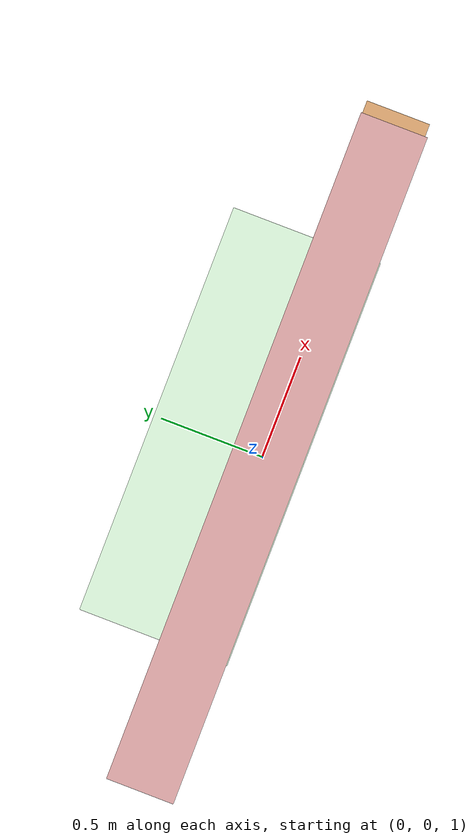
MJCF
<mujoco>
    <option gravity="0 0 -9.81" />
    <worldbody>
        <geom name="floor" pos="0 0 0" size="5 5 0.1" type="plane" rgba="0.8 0.9 0.8 1" />
        <body name="element2" pos="1 0 2"><freejoint /><geom name="element2" type="box" size="0.1 0.1 1" rgba="0.8 0.6 0.4 1" /></body><body name="element3" pos="0 0 3.1"><freejoint /><geom name="element3" type="box" size="1 0.1 0.1" rgba="0.8 0.6 0.6 1" /></body></worldbody>
</mujoco>
